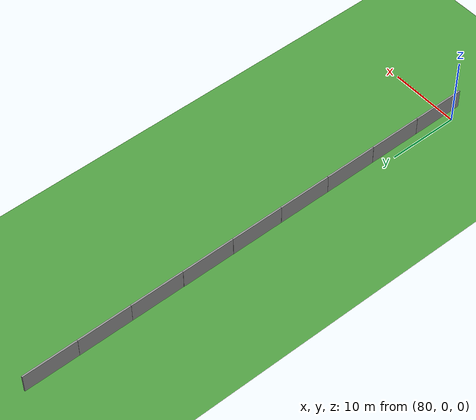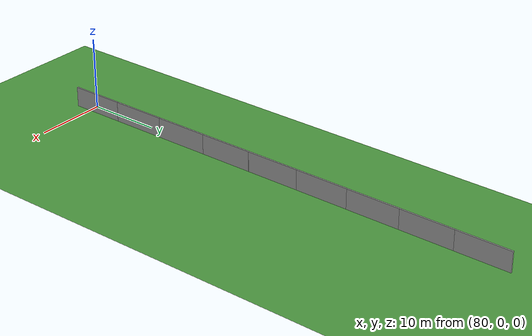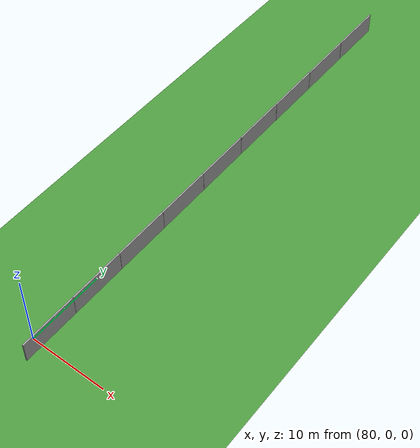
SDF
<sdf version="1.7">
 <world name="default">
  <model name="vrc_driving_terrain">
   <static>1</static>
   <link name="grass_plane">
    <collision name="collision">
     <geometry><plane><normal>0 0 1</normal><size>150 150</size></plane></geometry>
     <surface><friction><ode><mu>0.5</mu><mu2>0.5</mu2></ode></friction></surface>
    </collision>
    <visual name="visual_0">
     <cast_shadows>0</cast_shadows>
     <geometry><plane><normal>0 0 1</normal><size>150 150</size></plane></geometry>
     <material>
      <script>
       <uri>model://forest/vrc_driving_terrain/materials/scripts</uri>
       <uri>model://forest/vrc_driving_terrain/materials/textures</uri>
       <name>vrc/grass</name>
      </script>
     </material>
    </visual>
   </link>
   <pose>6.27224 -2.36963 0 0 -0 0</pose>
  </model>
  <model name="grey_wall_clone_10_clone_0_clone_1_clone">
   <static>1</static>
   <link name="link">
    <pose>0 0 1.4 0 -0 0</pose>
    <collision name="collision"><geometry><box><size>7.5 0.2 2.8</size></box></geometry></collision>
    <visual name="visual">
     <cast_shadows>0</cast_shadows>
     <geometry><box><size>7.5 0.2 2.8</size></box></geometry>
     <material>
      <script>
       <uri>model://forest/grey_wall/materials/scripts</uri>
       <uri>model://forest/grey_wall/materials/textures</uri>
       <name>vrc/grey_wall</name>
      </script>
     </material>
    </visual>
   </link>
   <pose>81.2538 1.43804 0 0 0 -1.56932</pose>
  </model>
  <model name="grey_wall_clone_10_clone_0_clone_0_clone">
   <static>1</static>
   <link name="link">
    <pose>0 0 1.4 0 -0 0</pose>
    <collision name="collision"><geometry><box><size>7.5 0.2 2.8</size></box></geometry></collision>
    <visual name="visual">
     <cast_shadows>0</cast_shadows>
     <geometry><box><size>7.5 0.2 2.8</size></box></geometry>
     <material>
      <script>
       <uri>model://forest/grey_wall/materials/scripts</uri>
       <uri>model://forest/grey_wall/materials/textures</uri>
       <name>vrc/grey_wall</name>
      </script>
     </material>
    </visual>
   </link>
   <pose>81.2487 8.94341 0 0 0 -1.56932</pose>
  </model>
  <model name="grey_wall_clone_10_clone_0_clone_clone">
   <static>1</static>
   <link name="link">
    <pose>0 0 1.4 0 -0 0</pose>
    <collision name="collision"><geometry><box><size>7.5 0.2 2.8</size></box></geometry></collision>
    <visual name="visual">
     <cast_shadows>0</cast_shadows>
     <geometry><box><size>7.5 0.2 2.8</size></box></geometry>
     <material>
      <script>
       <uri>model://forest/grey_wall/materials/scripts</uri>
       <uri>model://forest/grey_wall/materials/textures</uri>
       <name>vrc/grey_wall</name>
      </script>
     </material>
    </visual>
   </link>
   <pose>81.244 16.4592 0 0 0 -1.56932</pose>
  </model>
  <model name="grey_wall_clone_10_clone_0_clone_12">
   <static>1</static>
   <link name="link">
    <pose>0 0 1.4 0 -0 0</pose>
    <collision name="collision"><geometry><box><size>7.5 0.2 2.8</size></box></geometry></collision>
    <visual name="visual">
     <cast_shadows>0</cast_shadows>
     <geometry><box><size>7.5 0.2 2.8</size></box></geometry>
     <material>
      <script>
       <uri>model://forest/grey_wall/materials/scripts</uri>
       <uri>model://forest/grey_wall/materials/textures</uri>
       <name>vrc/grey_wall</name>
      </script>
     </material>
    </visual>
   </link>
   <pose>81.241 23.9604 0 0 0 -1.56932</pose>
  </model>
  <model name="grey_wall_clone_10_clone_0_clone_13">
   <static>1</static>
   <link name="link">
    <pose>0 0 1.4 0 -0 0</pose>
    <collision name="collision"><geometry><box><size>7.5 0.2 2.8</size></box></geometry></collision>
    <visual name="visual">
     <cast_shadows>0</cast_shadows>
     <geometry><box><size>7.5 0.2 2.8</size></box></geometry>
     <material>
      <script>
       <uri>model://forest/grey_wall/materials/scripts</uri>
       <uri>model://forest/grey_wall/materials/textures</uri>
       <name>vrc/grey_wall</name>
      </script>
     </material>
    </visual>
   </link>
   <pose>81.233 31.4667 0 0 0 -1.56932</pose>
  </model>
  <model name="grey_wall_clone_10_clone_0_clone_14">
   <static>1</static>
   <link name="link">
    <pose>0 0 1.4 0 -0 0</pose>
    <collision name="collision"><geometry><box><size>7.5 0.2 2.8</size></box></geometry></collision>
    <visual name="visual">
     <cast_shadows>0</cast_shadows>
     <geometry><box><size>7.5 0.2 2.8</size></box></geometry>
     <material>
      <script>
       <uri>model://forest/grey_wall/materials/scripts</uri>
       <uri>model://forest/grey_wall/materials/textures</uri>
       <name>vrc/grey_wall</name>
      </script>
     </material>
    </visual>
   </link>
   <pose>81.2299 38.978 0 0 0 -1.56932</pose>
  </model>
  <model name="grey_wall_clone_10_clone_0_clone_15">
   <static>1</static>
   <link name="link">
    <pose>0 0 1.4 0 -0 0</pose>
    <collision name="collision"><geometry><box><size>7.5 0.2 2.8</size></box></geometry></collision>
    <visual name="visual">
     <cast_shadows>0</cast_shadows>
     <geometry><box><size>7.5 0.2 2.8</size></box></geometry>
     <material>
      <script>
       <uri>model://forest/grey_wall/materials/scripts</uri>
       <uri>model://forest/grey_wall/materials/textures</uri>
       <name>vrc/grey_wall</name>
      </script>
     </material>
    </visual>
   </link>
   <pose>81.2399 46.4861 0 0 0 -1.56932</pose>
  </model>
  <model name="grey_wall_clone_10_clone_0_clone_16">
   <static>1</static>
   <link name="link">
    <pose>0 0 1.4 0 -0 0</pose>
    <collision name="collision"><geometry><box><size>7.5 0.2 2.8</size></box></geometry></collision>
    <visual name="visual">
     <cast_shadows>0</cast_shadows>
     <geometry><box><size>7.5 0.2 2.8</size></box></geometry>
     <material>
      <script>
       <uri>model://forest/grey_wall/materials/scripts</uri>
       <uri>model://forest/grey_wall/materials/textures</uri>
       <name>vrc/grey_wall</name>
      </script>
     </material>
    </visual>
   </link>
   <pose>81.2341 53.9889 0 0 0 -1.56932</pose>
  </model>
  <model name="grey_wall_clone_10_clone_0_clone_17">
   <static>1</static>
   <link name="link">
    <pose>0 0 1.4 0 -0 0</pose>
    <collision name="collision"><geometry><box><size>7.5 0.2 2.8</size></box></geometry></collision>
    <visual name="visual">
     <cast_shadows>0</cast_shadows>
     <geometry><box><size>7.5 0.2 2.8</size></box></geometry>
     <material>
      <script>
       <uri>model://forest/grey_wall/materials/scripts</uri>
       <uri>model://forest/grey_wall/materials/textures</uri>
       <name>vrc/grey_wall</name>
      </script>
     </material>
    </visual>
   </link>
   <pose>81.2319 61.4946 0 0 0 -1.56932</pose>
  </model>
 </world>
</sdf>
